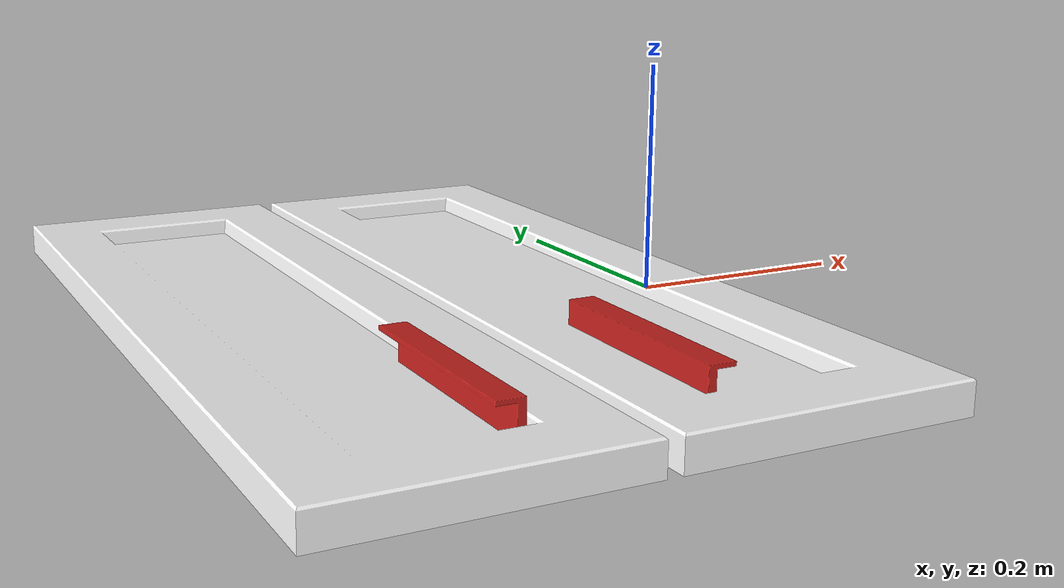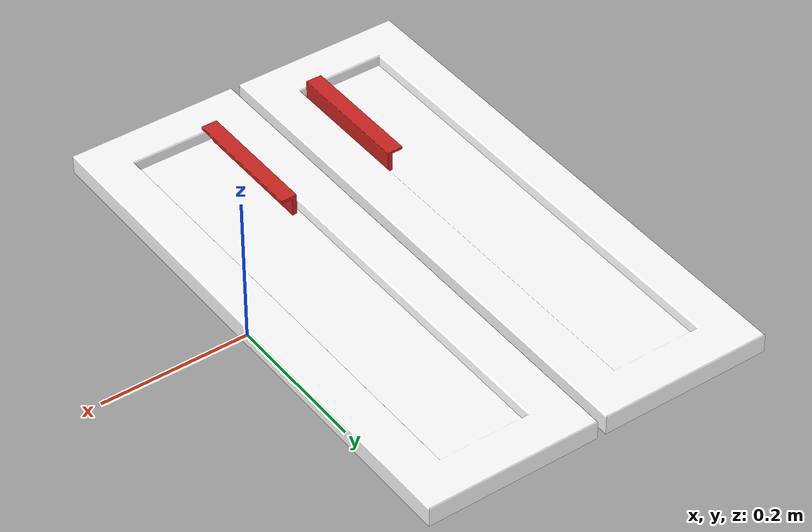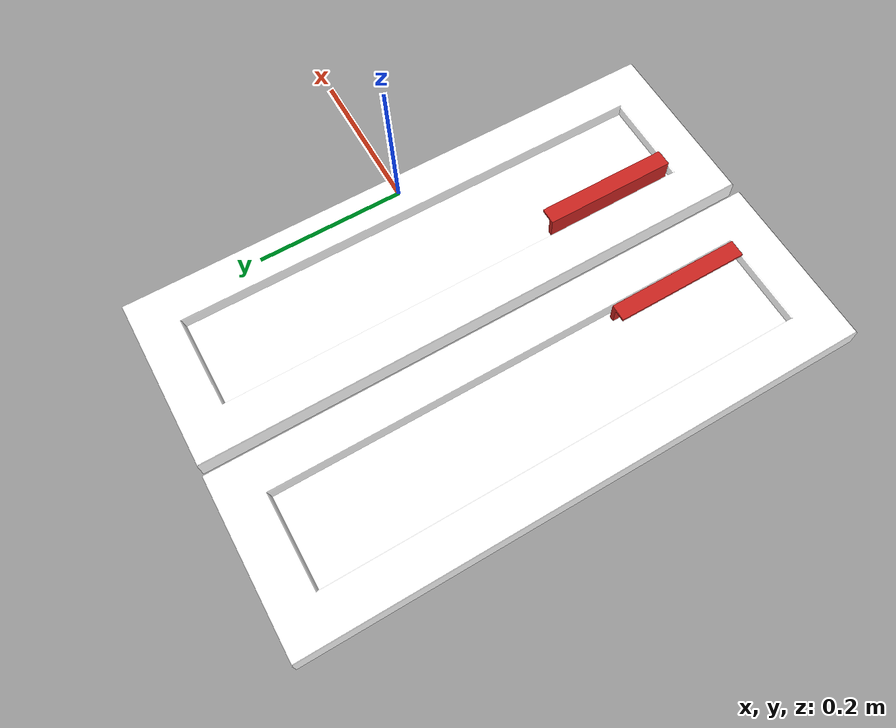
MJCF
<mujoco model="Cabinet_64c8b7ce">
  <compiler autolimits="true" boundmass="0.01" angle="radian"/>
  <default>
    <default class="/">
      <default class="__VISUAL_MJT__">
        <geom contype="0" conaffinity="0" group="0"/>
      </default>
      <default class="__STRUCTURAL_MJT__">
        <geom contype="8" conaffinity="15" group="4" friction="0.90000000000000002 0.90000000000000002 0.001" solref="0.025000000000000001 1" solimp="0.998 0.998 0.001"/>
      </default>
      <default class="__DYNAMIC_MJT__">
        <geom contype="1" conaffinity="15" group="4" friction="0.90000000000000002 0.90000000000000002 0.001" solref="0.025000000000000001 1" solimp="0.998 0.998 0.001"/>
      </default>
    </default>
  </default>
  <asset>
    <material name="material_WhiteWoodClean" class="/" specular="0.5" shininess="0.5" rgba="1 1 1 1"/>
    <mesh name="Cabinet_64c8b7ce_Mesh_01_eff1ed32" class="/" file="Cabinet_64c8b7ce_Mesh_01_eff1ed32/Cabinet_64c8b7ce_Mesh_01_eff1ed32.obj" scale="1 1 1" inertia="legacy"/>
    <texture name="HammeredMetal_AlbedoTransparency_2" type="2d" file="HammeredMetal_AlbedoTransparency.png"/>
    <material name="material_HammeredMetal_AlbedoTransparency_2" class="/" texture="HammeredMetal_AlbedoTransparency_2" specular="0.5" shininess="0.5" rgba="1 0.93407709999999999 0.81617649999999997 1"/>
    <mesh name="Cabinet_64c8b7ce_handle_3_178mm_01_2202c364" class="/" file="Cabinet_64c8b7ce_handle_3_178mm_01_2202c364/Cabinet_64c8b7ce_handle_3_178mm_01_2202c364.obj" scale="1 1 1" inertia="legacy"/>
    <mesh name="Cabinet_64c8b7ce_Mesh_02_9993596a" class="/" file="Cabinet_64c8b7ce_Mesh_02_9993596a/Cabinet_64c8b7ce_Mesh_02_9993596a.obj" scale="1 1 1" inertia="legacy"/>
    <mesh name="Cabinet_64c8b7ce_handle_3_178mm_02_0e604065" class="/" file="Cabinet_64c8b7ce_handle_3_178mm_02_0e604065/Cabinet_64c8b7ce_handle_3_178mm_02_0e604065.obj" scale="1 1 1" inertia="legacy"/>
  </asset>
  <worldbody>
    <body name="Cabinet_64c8b7ce">
      <body name="Cabinet_64c8b7ce_Mesh_01_eff1ed32" pos="-0 0 0" quat="1 0 0 0">
        <geom name="Cabinet_64c8b7ce_Mesh_01_eff1ed32" class="__VISUAL_MJT__" type="mesh" material="material_WhiteWoodClean" mesh="Cabinet_64c8b7ce_Mesh_01_eff1ed32"/>
        <joint name="Cabinet_64c8b7ce_joint" class="/" type="hinge" pos="-0 0 0" axis="0 -1 0" stiffness="0" range="-1.5707963267948966 0" damping="0.10000000000000001" frictionloss="0"/>
        <geom name="Cabinet_64c8b7ce_Mesh_01_eff1ed32_PrimitiveCollider_0" class="__DYNAMIC_MJT__" type="box" size="0.11750037223100662 0.3750002384185791 0.013550042174756527" rgba="0 1 0 1" pos="-0.11250007152557373 -2.384185791015625e-07 0.013532638549804688" quat="0 1 0 0"/>
        <body name="Cabinet_64c8b7ce_handle_3_178mm_01_2202c364" pos="-0.15970003604888916 -0.22420001029968262 0.0099999904632568359" quat="0.70710678118654757 0 0 -0.70710678118654746">
          <geom name="Cabinet_64c8b7ce_handle_3_178mm_01_2202c364" class="__VISUAL_MJT__" type="mesh" material="material_HammeredMetal_AlbedoTransparency_2" mesh="Cabinet_64c8b7ce_handle_3_178mm_01_2202c364"/>
          <geom name="Cabinet_64c8b7ce_handle_3_178mm_01_2202c364_PrimitiveCollider_0" class="__DYNAMIC_MJT__" type="box" size="0.088752105832099915 0.0035549125168472528 0.016431529074907303" rgba="0 1 0 1" pos="-1.3731445980269541e-09 8.2388389444076893e-09 0.016289949417114258" quat="0 1 0 0"/>
          <geom name="Cabinet_64c8b7ce_handle_3_178mm_01_2202c364_PrimitiveCollider_1" class="__DYNAMIC_MJT__" type="box" size="0.088752105832099915 0.0077598155476152897 0.0019227256998419762" rgba="0 1 0 1" pos="-1.7394139462112435e-08 0.01128496415913105 0.030798906460404396" quat="0 1 0 0"/>
        </body>
      </body>
      <body name="Cabinet_64c8b7ce_Mesh_02_9993596a" pos="-0.46210002899169922 0 0" quat="1 0 0 0">
        <geom name="Cabinet_64c8b7ce_Mesh_02_9993596a" class="__VISUAL_MJT__" type="mesh" material="material_WhiteWoodClean" mesh="Cabinet_64c8b7ce_Mesh_02_9993596a"/>
        <joint name="Cabinet_64c8b7ce_Mesh_02_9993596a__1" class="/" type="hinge" pos="-2.9802322387695312e-08 0 0" axis="0 -1 0" stiffness="0" range="0 1.5707963267948966" damping="0.10000000000000001" frictionloss="0"/>
        <geom name="Cabinet_64c8b7ce_Mesh_02_9993596a_PrimitiveCollider_0" class="__DYNAMIC_MJT__" type="box" size="0.11750035732984543 0.37500020861625671 0.013550043106079102" rgba="0 1 0 1" pos="0.11249995231628418 0 0.013550043106079102" quat="0 1 0 0"/>
        <body name="Cabinet_64c8b7ce_handle_3_178mm_02_0e604065" pos="0.15999993681907654 -0.22399997711181641 0.0099999904632568359" quat="0.70710678118654757 0 0 0.70710678118654746">
          <geom name="Cabinet_64c8b7ce_handle_3_178mm_02_0e604065" class="__VISUAL_MJT__" type="mesh" material="material_HammeredMetal_AlbedoTransparency_2" mesh="Cabinet_64c8b7ce_handle_3_178mm_02_0e604065"/>
          <geom name="Cabinet_64c8b7ce_handle_3_178mm_02_0e604065_PrimitiveCollider_0" class="__DYNAMIC_MJT__" type="box" size="0.088752083480358124 0.0035549115855246782 0.016431529074907303" rgba="0 1 0 1" pos="1.373135938287362e-09 -8.2388424971213681e-09 0.016289949417114258" quat="0 1 0 0"/>
          <geom name="Cabinet_64c8b7ce_handle_3_178mm_02_0e604065_PrimitiveCollider_1" class="__DYNAMIC_MJT__" type="box" size="0.088752083480358124 0.0077598136849701405 0.0019227256998419762" rgba="0 1 0 1" pos="1.9235193438049691e-09 0.011284812353551388 0.030798917636275291" quat="0 1 0 0"/>
        </body>
      </body>
    </body>
  </worldbody>
  <contact>
    <exclude name="//unnamed_contact_0" body1="Cabinet_64c8b7ce_Mesh_01_eff1ed32" body2="Cabinet_64c8b7ce_handle_3_178mm_01_2202c364"/>
    <exclude name="//unnamed_contact_1" body1="Cabinet_64c8b7ce_Mesh_02_9993596a" body2="Cabinet_64c8b7ce_handle_3_178mm_01_2202c364"/>
  </contact>
</mujoco>
